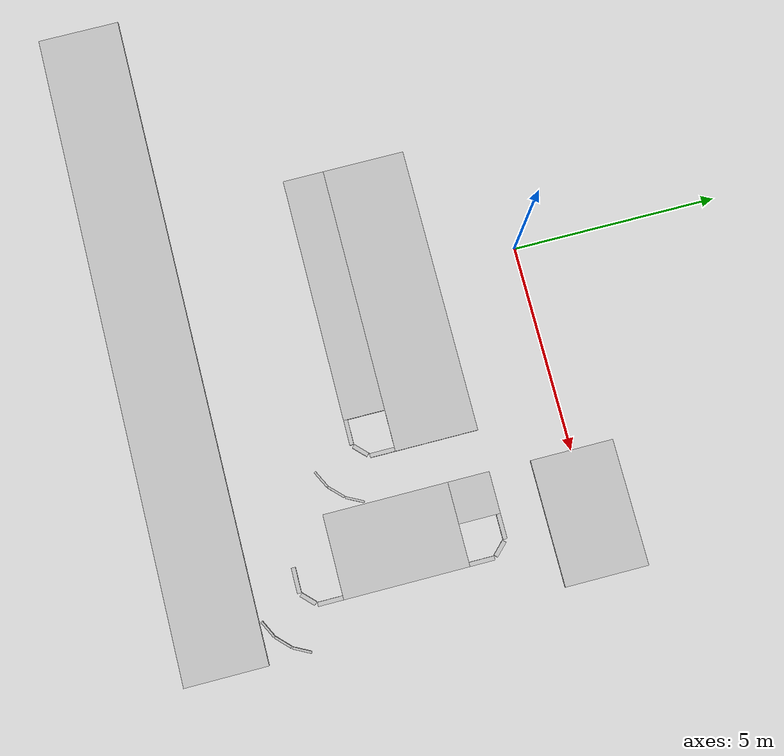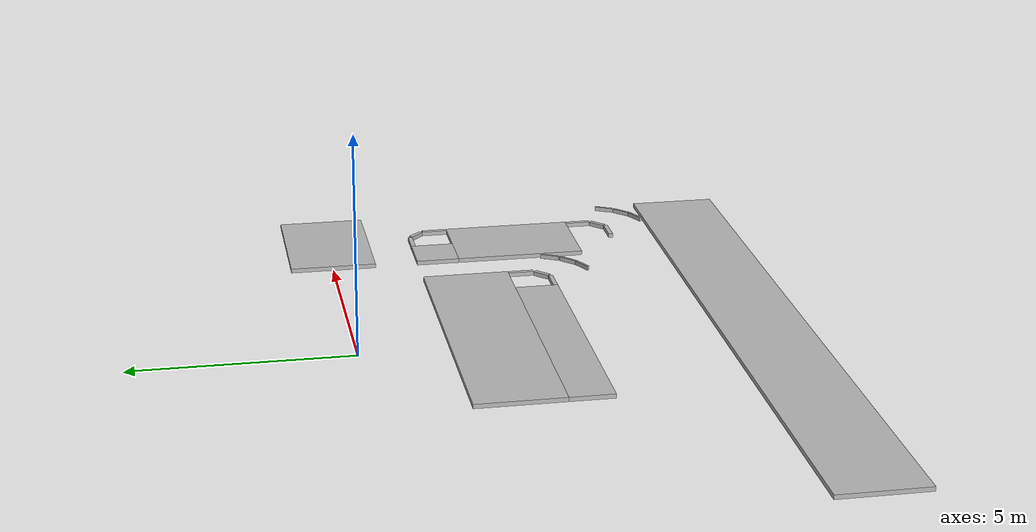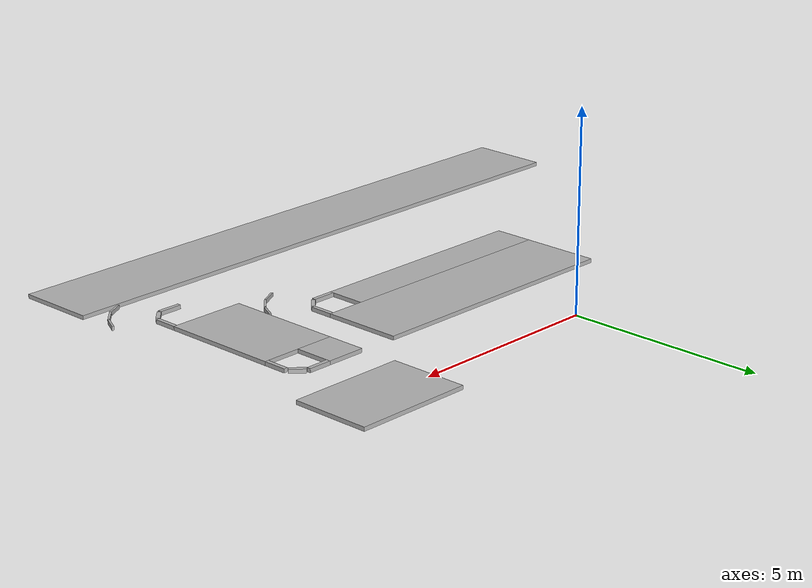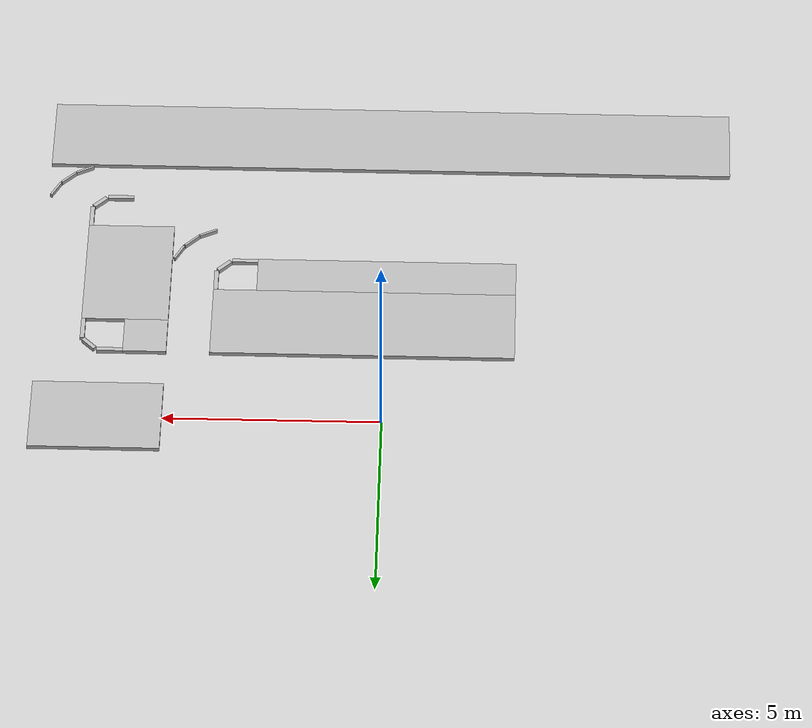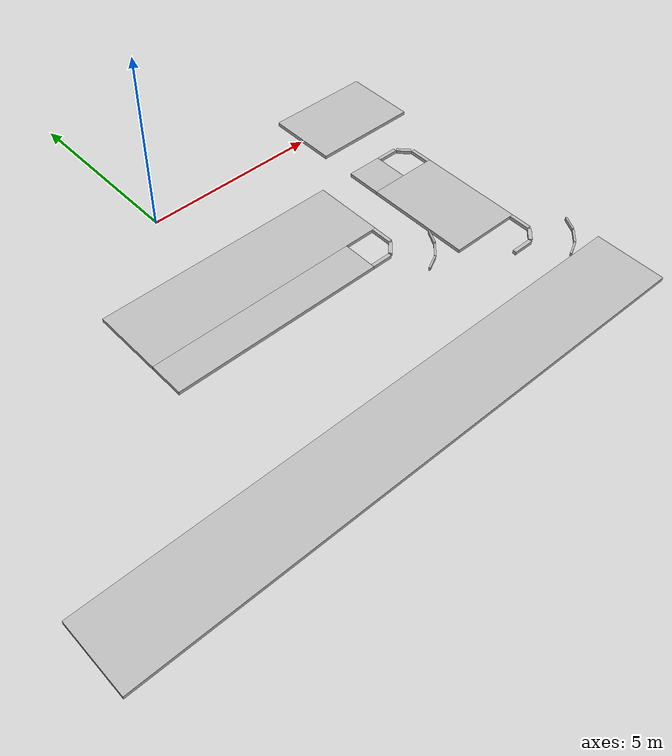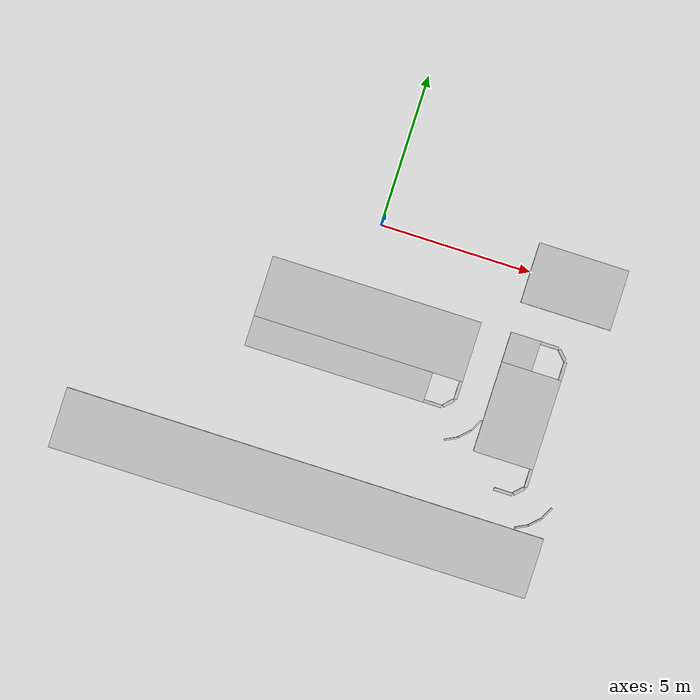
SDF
<sdf version="1.6">
 <world name="default">
  <model name="ground">
   <link name="body">
    <collision name="geom">
     <geometry><plane><normal>0 0 1</normal></plane></geometry>
     <surface><friction><ode><mu>100</mu><mu2>50</mu2></ode></friction></surface>
    </collision>
   </link>
   <static>true</static>
  </model>
  <include><uri>model://sun</uri></include>
  <model name="box_corner_1_0">
   <static>true</static>
   <pose>6.78 -6.78 0.05 0 0 2.35619</pose>
   <link name="link">
    <visual name="visual"><geometry><box><size>.1 .4 .1</size></box></geometry></visual>
    <collision name="collision"><geometry><box><size>.1 .4 .1</size></box></geometry></collision>
   </link>
  </model>
  <model name="box_corner_1_1">
   <static>true</static>
   <pose>6.95 -6.3 0.05 0 0 0</pose>
   <link name="link">
    <visual name="visual"><geometry><box><size>.1 .6 .1</size></box></geometry></visual>
    <collision name="collision"><geometry><box><size>.1 .6 .1</size></box></geometry></collision>
   </link>
  </model>
  <model name="box_corner_1_2">
   <static>true</static>
   <pose>6.3 -6.95 0.05 0 0 1.570796</pose>
   <link name="link">
    <visual name="visual"><geometry><box><size>.1 .6 .1</size></box></geometry></visual>
    <collision name="collision"><geometry><box><size>.1 .6 .1</size></box></geometry></collision>
   </link>
  </model>
  <model name="box_straight_2">
   <static>true</static>
   <pose>6 -4.5 0.05 0 0 0</pose>
   <link name="link">
    <visual name="visual"><geometry><box><size>2 3 .1</size></box></geometry></visual>
    <collision name="collision"><geometry><box><size>2 3 .1</size></box></geometry></collision>
   </link>
  </model>
  <model name="box_corner_outside_1_0">
   <static>true</static>
   <pose>4.2 -5.84 0.05 0 0 2.03965265</pose>
   <link name="link">
    <visual name="visual"><geometry><box><size>.05 .45 .1</size></box></geometry></visual>
    <collision name="collision"><geometry><box><size>.05 .45 .1</size></box></geometry></collision>
   </link>
  </model>
  <model name="box_corner_outside_1_1">
   <static>true</static>
   <pose>4.57 -5.57 0.05 0 0 2.357678</pose>
   <link name="link">
    <visual name="visual"><geometry><box><size>.05 .45 .1</size></box></geometry></visual>
    <collision name="collision"><geometry><box><size>.05 .45 .1</size></box></geometry></collision>
   </link>
  </model>
  <model name="box_corner_outside_1_2">
   <static>true</static>
   <pose>4.85 -5.19 0.05 0 0 2.667178</pose>
   <link name="link">
    <visual name="visual"><geometry><box><size>.05 .45 .1</size></box></geometry></visual>
    <collision name="collision"><geometry><box><size>.05 .45 .1</size></box></geometry></collision>
   </link>
  </model>
  <model name="box_straight_3">
   <static>true</static>
   <pose>5.5 -2.5 0.05 0 0 0</pose>
   <link name="link">
    <visual name="visual"><geometry><box><size>1 1 .1</size></box></geometry></visual>
    <collision name="collision"><geometry><box><size>1 1 .1</size></box></geometry></collision>
   </link>
  </model>
  <model name="box_corner_2_0">
   <static>true</static>
   <pose>6.78 -2.22 0.05 0 0 0.785398163</pose>
   <link name="link">
    <visual name="visual"><geometry><box><size>.1 .4 .1</size></box></geometry></visual>
    <collision name="collision"><geometry><box><size>.1 .4 .1</size></box></geometry></collision>
   </link>
  </model>
  <model name="box_corner_2_1">
   <static>true</static>
   <pose>6.95 -2.7 0.05 0 0 0</pose>
   <link name="link">
    <visual name="visual"><geometry><box><size>.1 .6 .1</size></box></geometry></visual>
    <collision name="collision"><geometry><box><size>.1 .6 .1</size></box></geometry></collision>
   </link>
  </model>
  <model name="box_corner_2_2">
   <static>true</static>
   <pose>6.3 -2.05 0.05 0 0 1.570796</pose>
   <link name="link">
    <visual name="visual"><geometry><box><size>.1 .6 .1</size></box></geometry></visual>
    <collision name="collision"><geometry><box><size>.1 .6 .1</size></box></geometry></collision>
   </link>
  </model>
  <model name="box_straight_4">
   <static>true</static>
   <pose>0.5 -3 0.05 0 0 0</pose>
   <link name="link">
    <visual name="visual"><geometry><box><size>7 2 .1</size></box></geometry></visual>
    <collision name="collision"><geometry><box><size>7 2 .1</size></box></geometry></collision>
   </link>
  </model>
  <model name="box_straight_5">
   <static>true</static>
   <pose>0 -4.5 0.05 0 0 0</pose>
   <link name="link">
    <visual name="visual"><geometry><box><size>6 1 .1</size></box></geometry></visual>
    <collision name="collision"><geometry><box><size>6 1 .1</size></box></geometry></collision>
   </link>
  </model>
  <model name="box_corner_3_0">
   <static>true</static>
   <pose>3.78 -4.78 0.05 0 0 2.35619</pose>
   <link name="link">
    <visual name="visual"><geometry><box><size>.1 .4 .1</size></box></geometry></visual>
    <collision name="collision"><geometry><box><size>.1 .4 .1</size></box></geometry></collision>
   </link>
  </model>
  <model name="box_corner_3_1">
   <static>true</static>
   <pose>3.95 -4.3 0.05 0 0 0</pose>
   <link name="link">
    <visual name="visual"><geometry><box><size>.1 .6 .1</size></box></geometry></visual>
    <collision name="collision"><geometry><box><size>.1 .6 .1</size></box></geometry></collision>
   </link>
  </model>
  <model name="box_corner_3_2">
   <static>true</static>
   <pose>3.3 -4.95 0.05 0 0 1.570796</pose>
   <link name="link">
    <visual name="visual"><geometry><box><size>.1 .6 .1</size></box></geometry></visual>
    <collision name="collision"><geometry><box><size>.1 .6 .1</size></box></geometry></collision>
   </link>
  </model>
  <model name="box_straight_11">
   <static>true</static>
   <pose>6.5 0 0.05 0 0 0</pose>
   <link name="link">
    <visual name="visual"><geometry><box><size>3 2 .1</size></box></geometry></visual>
    <collision name="collision"><geometry><box><size>3 2 .1</size></box></geometry></collision>
   </link>
  </model>
  <model name="box_straight_18">
   <static>true</static>
   <pose>0 -9 0.05 0 0 0</pose>
   <link name="link">
    <visual name="visual"><geometry><box><size>16 2 .1</size></box></geometry></visual>
    <collision name="collision"><geometry><box><size>16 2 .1</size></box></geometry></collision>
   </link>
  </model>
  <model name="box_corner_outside_9_0">
   <static>true</static>
   <pose>7.2 -7.84 0.05 0 0 2.03965265</pose>
   <link name="link">
    <visual name="visual"><geometry><box><size>.05 .45 .1</size></box></geometry></visual>
    <collision name="collision"><geometry><box><size>.05 .45 .1</size></box></geometry></collision>
   </link>
  </model>
  <model name="box_corner_outside_9_1">
   <static>true</static>
   <pose>7.57 -7.57 0.05 0 0 2.357678</pose>
   <link name="link">
    <visual name="visual"><geometry><box><size>.05 .45 .1</size></box></geometry></visual>
    <collision name="collision"><geometry><box><size>.05 .45 .1</size></box></geometry></collision>
   </link>
  </model>
  <model name="box_corner_outside_9_2">
   <static>true</static>
   <pose>7.85 -7.19 0.05 0 0 2.667178</pose>
   <link name="link">
    <visual name="visual"><geometry><box><size>.05 .45 .1</size></box></geometry></visual>
    <collision name="collision"><geometry><box><size>.05 .45 .1</size></box></geometry></collision>
   </link>
  </model>
 </world>
</sdf>
